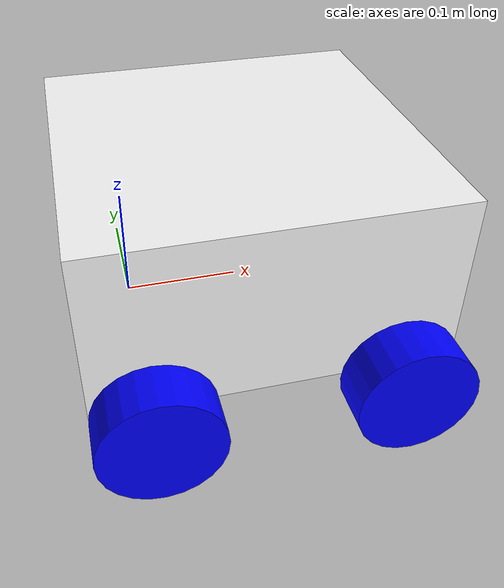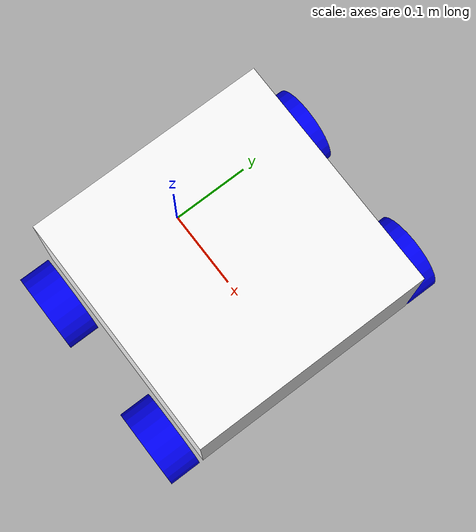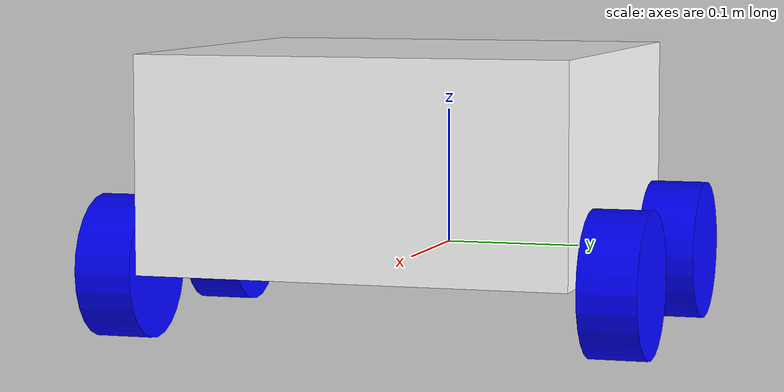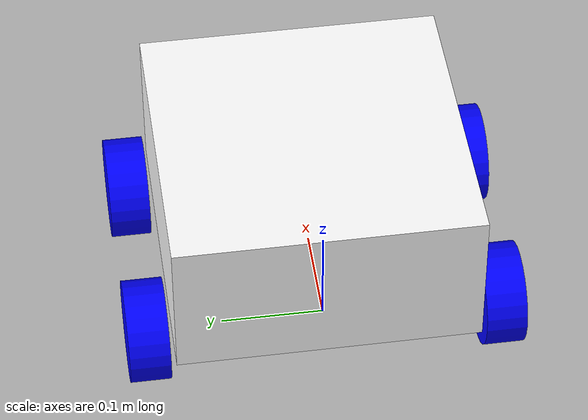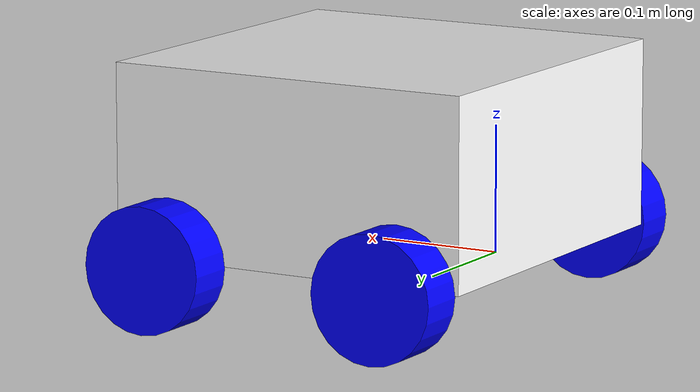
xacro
<?xml version="1.0"?>
<robot xmlns:xacro="http://www.ros.org/wiki/xacro">

    <xacro:include filename="inertial_macros.xacro" />

    <material name="grey">
        <color rgba="0.2 0.2 0.2 1"/>
    </material>

    <material name="white">
        <color rgba="1 1 1 1"/>
    </material>

    <material name="orange">
        <color rgba="1 0.3 0.1 1"/>
    </material>

    <material name="blue">
        <color rgba="0 0 1 1"/>
    </material>

    <material name="red">
        <color rgba="1 0 0 1"/>
    </material>

    <link name="base">
        <inertial>
            <mass value="0.1"/>
            <inertia ixx="0.001" ixy="0" ixz="0" iyy="0.001" iyz="0" izz="0.001"/>
        </inertial>
    </link>

    <joint name="base_footprint_joint" type="fixed">
        <parent link="base"/>
        <child link="base_footprint"/>
        <origin xyz="0 0 0" rpy="0 0 0"/>
    </joint>

    <link name="base_footprint"></link>

    <joint name="chasis_joint" type="fixed">
        <parent link="base"/>
        <child link="chassis"/>
        <origin xyz="-0.1 0 0"/>
    </joint>

    <link name="chassis">
        <visual>
            <origin xyz="0.2 0 0.075"/>
            <geometry>
                <box size="0.3 0.3 0.15"/>
            </geometry>
            <material name="white"/>
        </visual>
        <collision>
            <origin xyz="0.2 0 0.075"/>
            <geometry>
                <box size="0.3 0.3 0.15"/>
            </geometry>
        </collision>
        <xacro:inertial_box mass="0.5" x="0.3" y="0.3" z="0.15">
            <origin xyz="0.15 0 0.075" rpy="0 0 0"/>
        </xacro:inertial_box>
    </link>

<!-- WHEELS -->
    <joint name="front_left_wheel_joint" type="continuous">
        <parent link="base"/>
        <child link="front_left_wheel"/>
        <origin xyz="0 0.175 0" rpy="${-pi/2} 0 0"/>
        <axis xyz="0 0 1"/>
    </joint>

    <link name="front_left_wheel">
        <visual>
            <geometry>
                <cylinder radius="0.05" length="0.04"/>
            </geometry>
            <material name="blue"/>
        </visual>
        <collision>
            <geometry>
                <cylinder radius="0.05" length="0.04"/>
            </geometry>
            <surface>
                <friction>
                    <ode>
                        <mu>1.0</mu>
                        <mu2>1.0</mu2>
                    </ode>
                </friction>
            </surface>
        </collision>
        <xacro:inertial_cylinder mass="0.1" length="0.04" radius="0.05">
            <origin xyz="0 0 0" rpy="0 0 0"/>
        </xacro:inertial_cylinder>
    </link>

    <joint name="front_right_wheel_joint" type="continuous">
        <parent link="base"/>
        <child link="front_right_wheel"/>
        <origin xyz="0 -0.175 0" rpy="${-pi/2} 0 0"/>
        <axis xyz="0 0 1"/>
    </joint>

    <link name="front_right_wheel">
        <visual>
            <geometry>
                <cylinder radius="0.05" length="0.04"/>
            </geometry>
            <material name="blue"/>
        </visual>
        <collision>
            <geometry>
                <cylinder radius="0.05" length="0.04"/>
            </geometry>
            <surface>
                <friction>
                    <ode>
                        <mu>1.0</mu>
                        <mu2>1.0</mu2>
                    </ode>
                </friction>
            </surface>
        </collision>
        <xacro:inertial_cylinder mass="0.1" length="0.04" radius="0.05">
            <origin xyz="0 0 0" rpy="0 0 0"/>
        </xacro:inertial_cylinder>
    </link>

    <joint name="back_left_wheel_joint" type="continuous">
        <parent link="base"/>
        <child link="back_left_wheel"/>
        <origin xyz="0.2 0.175 0" rpy="${-pi/2} 0 0"/>
        <axis xyz="0 0 1"/>
    </joint>

    <link name="back_left_wheel">
        <visual>
            <geometry>
                <cylinder radius="0.05" length="0.04"/>
            </geometry>
            <material name="blue"/>
        </visual>
        <collision>
            <geometry>
                <cylinder radius="0.05" length="0.04"/>
            </geometry>
        </collision>
        <xacro:inertial_cylinder mass="0.1" length="0.04" radius="0.05">
            <origin xyz="0 0 0" rpy="0 0 0"/>
        </xacro:inertial_cylinder>
    </link>

    <joint name="back_right_wheel_joint" type="continuous">
        <parent link="base"/>
        <child link="back_right_wheel"/>
        <origin xyz="0.2 -0.175 0" rpy="${-pi/2} 0 0"/>
        <axis xyz="0 0 1"/>
    </joint>

    <link name="back_right_wheel">
        <visual>
            <geometry>
                <cylinder radius="0.05" length="0.04"/>
            </geometry>
            <material name="blue"/>
        </visual>
        <collision>
            <geometry>
                <cylinder radius="0.05" length="0.04"/>
            </geometry>
        </collision>
        <xacro:inertial_cylinder mass="0.1" length="0.04" radius="0.05">
            <origin xyz="0 0 0" rpy="0 0 0"/>
        </xacro:inertial_cylinder>
    </link>

</robot>
